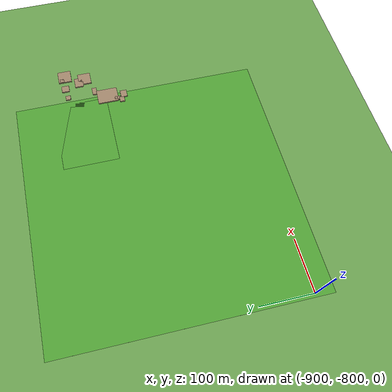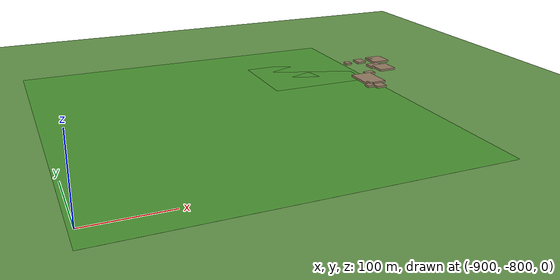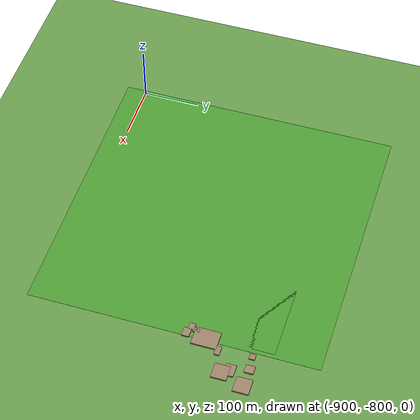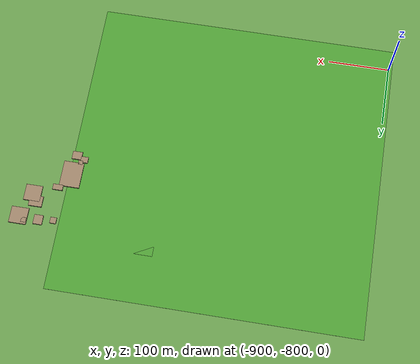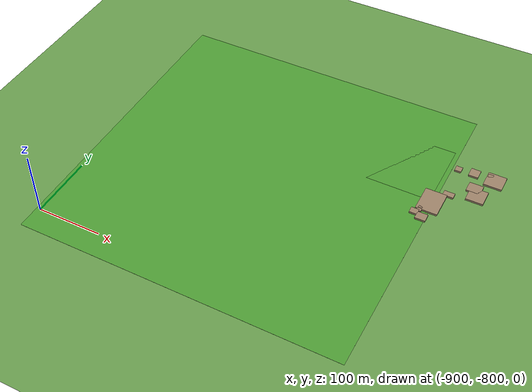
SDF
<sdf version="1.9">
 <world name="kimje_farmland">
  <model name="ground_plane">
   <static>true</static>
   <link name="link">
    <collision name="collision">
     <geometry><plane><normal>0 0 1</normal><size>2000 2000</size></plane></geometry>
    </collision>
    <visual name="visual">
     <geometry><plane><normal>0 0 1</normal><size>2000 2000</size></plane></geometry>
     <material><ambient>0.4 0.6 0.3 1</ambient><diffuse>0.4 0.6 0.3 1</diffuse></material>
    </visual>
   </link>
  </model>
  <model name="osm_720">
   <static>true</static>
   <pose>-401.32 -448.48 1.500 0 0 0</pose>
   <link name="link">
    <collision name="collision"><geometry><box><size>9.92 9.85 3.000</size></box></geometry></collision>
    <visual name="visual">
     <geometry><box><size>9.92 9.85 3.000</size></box></geometry>
     <material><ambient>0.6 0.5 0.4 1</ambient><diffuse>0.6 0.5 0.4 1</diffuse></material>
    </visual>
   </link>
  </model>
  <model name="osm_721">
   <static>true</static>
   <pose>-413.65 -529.28 1.500 0 0 0</pose>
   <link name="link">
    <collision name="collision"><geometry><box><size>32.62 42.54 3.000</size></box></geometry></collision>
    <visual name="visual">
     <geometry><box><size>32.62 42.54 3.000</size></box></geometry>
     <material><ambient>0.6 0.5 0.4 1</ambient><diffuse>0.6 0.5 0.4 1</diffuse></material>
    </visual>
   </link>
  </model>
  <model name="osm_722">
   <static>true</static>
   <pose>-396.41 -504.46 1.500 0 0 0</pose>
   <link name="link">
    <collision name="collision"><geometry><box><size>16.22 9.23 3.000</size></box></geometry></collision>
    <visual name="visual">
     <geometry><box><size>16.22 9.23 3.000</size></box></geometry>
     <material><ambient>0.6 0.5 0.4 1</ambient><diffuse>0.6 0.5 0.4 1</diffuse></material>
    </visual>
   </link>
  </model>
  <model name="osm_723">
   <static>true</static>
   <pose>-415.79 -563.05 1.500 0 0 0</pose>
   <link name="link">
    <collision name="collision"><geometry><box><size>15.86 13.19 3.000</size></box></geometry></collision>
    <visual name="visual">
     <geometry><box><size>15.86 13.19 3.000</size></box></geometry>
     <material><ambient>0.6 0.5 0.4 1</ambient><diffuse>0.6 0.5 0.4 1</diffuse></material>
    </visual>
   </link>
  </model>
  <model name="osm_724">
   <static>true</static>
   <pose>-428.80 -557.43 1.500 0 0 0</pose>
   <link name="link">
    <collision name="collision"><geometry><box><size>11.76 10.03 3.000</size></box></geometry></collision>
    <visual name="visual">
     <geometry><box><size>11.76 10.03 3.000</size></box></geometry>
     <material><ambient>0.6 0.5 0.4 1</ambient><diffuse>0.6 0.5 0.4 1</diffuse></material>
    </visual>
   </link>
  </model>
  <model name="osm_725">
   <static>true</static>
   <pose>-423.66 -551.79 1.500 0 0 0</pose>
   <link name="link">
    <collision name="collision"><geometry><box><size>7.20 6.61 3.000</size></box></geometry></collision>
    <visual name="visual">
     <geometry><box><size>7.20 6.61 3.000</size></box></geometry>
     <material><ambient>0.6 0.5 0.4 1</ambient><diffuse>0.6 0.5 0.4 1</diffuse></material>
    </visual>
   </link>
  </model>
  <model name="osm_726">
   <static>true</static>
   <pose>-423.05 -545.50 1.500 0 0 0</pose>
   <link name="link">
    <collision name="collision"><geometry><box><size>6.70 5.29 3.000</size></box></geometry></collision>
    <visual name="visual">
     <geometry><box><size>6.70 5.29 3.000</size></box></geometry>
     <material><ambient>0.6 0.5 0.4 1</ambient><diffuse>0.6 0.5 0.4 1</diffuse></material>
    </visual>
   </link>
  </model>
  <model name="osm_728">
   <static>true</static>
   <pose>-658.17 -587.19 0.025 0 0 0</pose>
   <link name="link">
    <collision name="collision"><geometry><box><size>495.95 496.83 0.050</size></box></geometry></collision>
    <visual name="visual">
     <geometry><box><size>495.95 496.83 0.050</size></box></geometry>
     <material><ambient>0.3 0.6 0.2 1</ambient><diffuse>0.3 0.6 0.2 1</diffuse></material>
    </visual>
   </link>
  </model>
  <model name="osm_729">
   <static>true</static>
   <pose>-491.68 -470.87 0.025 0 0 0</pose>
   <link name="link">
    <collision name="collision"><geometry><box><size>148.93 109.71 0.050</size></box></geometry></collision>
    <visual name="visual">
     <geometry><box><size>148.93 109.71 0.050</size></box></geometry>
     <material><ambient>0.3 0.6 0.2 1</ambient><diffuse>0.3 0.6 0.2 1</diffuse></material>
    </visual>
   </link>
  </model>
  <model name="osm_825">
   <static>true</static>
   <pose>-377.46 -445.95 1.500 0 0 0</pose>
   <link name="link">
    <collision name="collision"><geometry><box><size>14.56 15.44 3.000</size></box></geometry></collision>
    <visual name="visual">
     <geometry><box><size>14.56 15.44 3.000</size></box></geometry>
     <material><ambient>0.6 0.5 0.4 1</ambient><diffuse>0.6 0.5 0.4 1</diffuse></material>
    </visual>
   </link>
  </model>
  <model name="osm_827">
   <static>true</static>
   <pose>-354.55 -441.98 1.500 0 0 0</pose>
   <link name="link">
    <collision name="collision"><geometry><box><size>7.86 7.68 3.000</size></box></geometry></collision>
    <visual name="visual">
     <geometry><box><size>7.86 7.68 3.000</size></box></geometry>
     <material><ambient>0.6 0.5 0.4 1</ambient><diffuse>0.6 0.5 0.4 1</diffuse></material>
    </visual>
   </link>
  </model>
  <model name="osm_828">
   <static>true</static>
   <pose>-345.60 -448.23 1.500 0 0 0</pose>
   <link name="link">
    <collision name="collision"><geometry><box><size>27.78 26.84 3.000</size></box></geometry></collision>
    <visual name="visual">
     <geometry><box><size>27.78 26.84 3.000</size></box></geometry>
     <material><ambient>0.6 0.5 0.4 1</ambient><diffuse>0.6 0.5 0.4 1</diffuse></material>
    </visual>
   </link>
  </model>
  <model name="osm_871">
   <static>true</static>
   <pose>-366.99 -475.81 1.500 0 0 0</pose>
   <link name="link">
    <collision name="collision"><geometry><box><size>21.49 17.51 3.000</size></box></geometry></collision>
    <visual name="visual">
     <geometry><box><size>21.49 17.51 3.000</size></box></geometry>
     <material><ambient>0.6 0.5 0.4 1</ambient><diffuse>0.6 0.5 0.4 1</diffuse></material>
    </visual>
   </link>
  </model>
  <model name="osm_873">
   <static>true</static>
   <pose>-359.56 -488.49 1.500 0 0 0</pose>
   <link name="link">
    <collision name="collision"><geometry><box><size>26.55 26.24 3.000</size></box></geometry></collision>
    <visual name="visual">
     <geometry><box><size>26.55 26.24 3.000</size></box></geometry>
     <material><ambient>0.6 0.5 0.4 1</ambient><diffuse>0.6 0.5 0.4 1</diffuse></material>
    </visual>
   </link>
  </model>
 </world>
</sdf>
